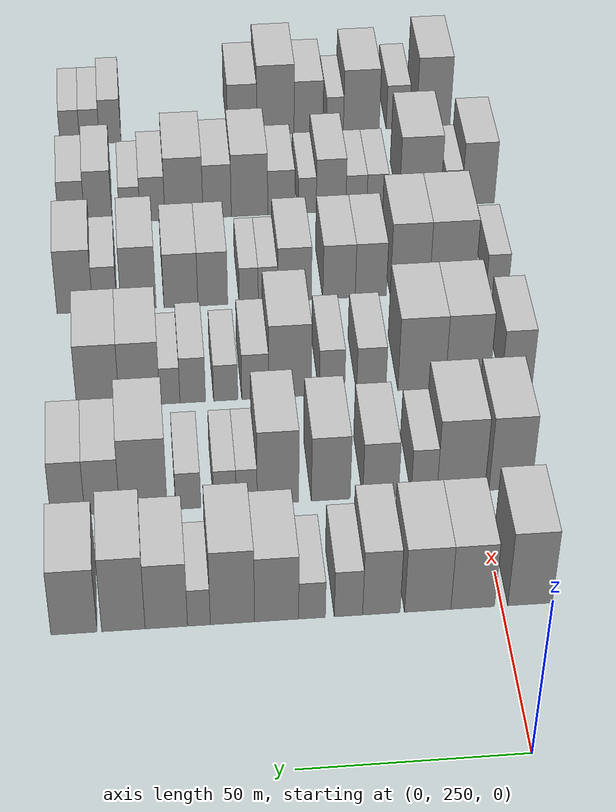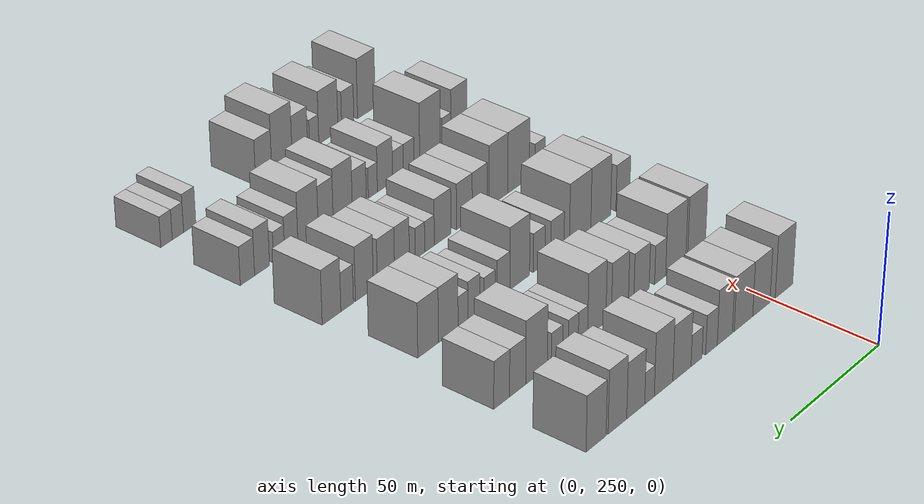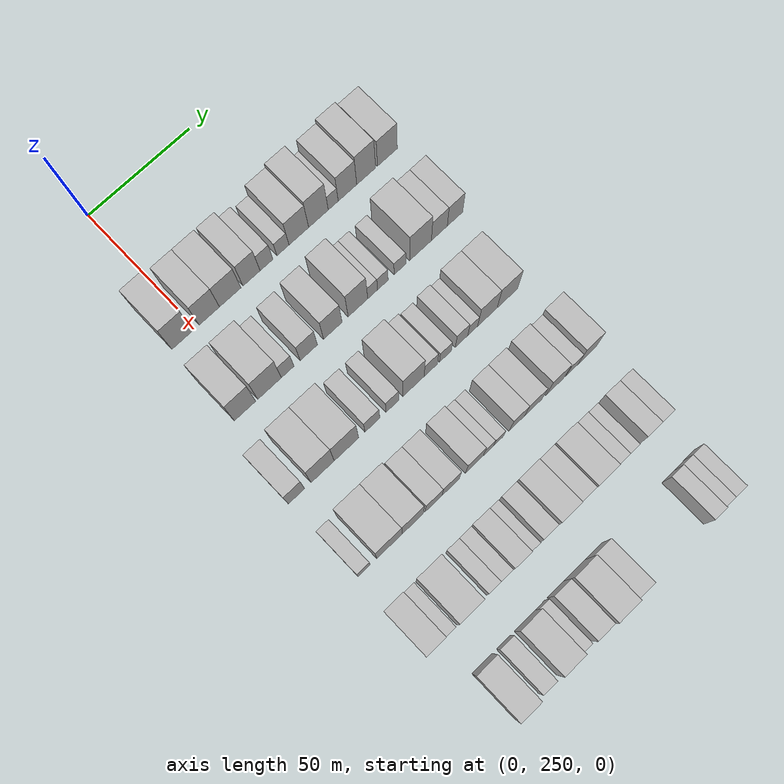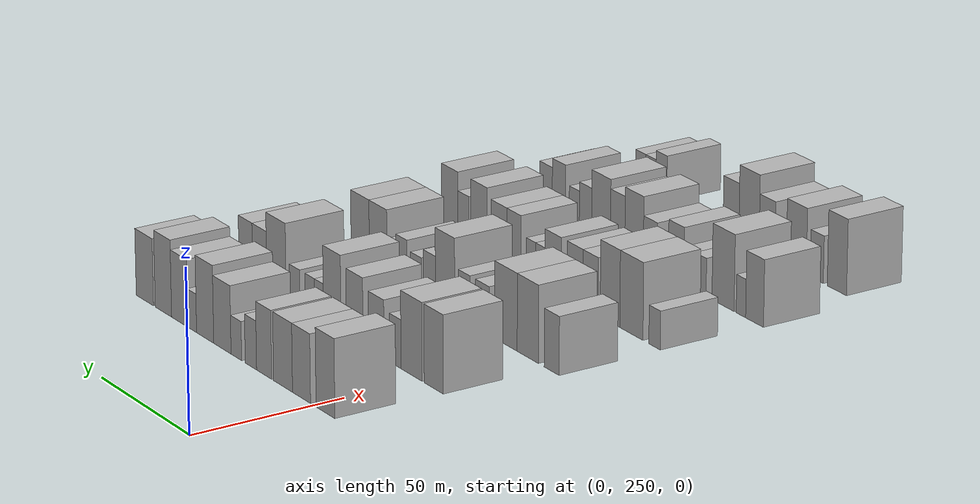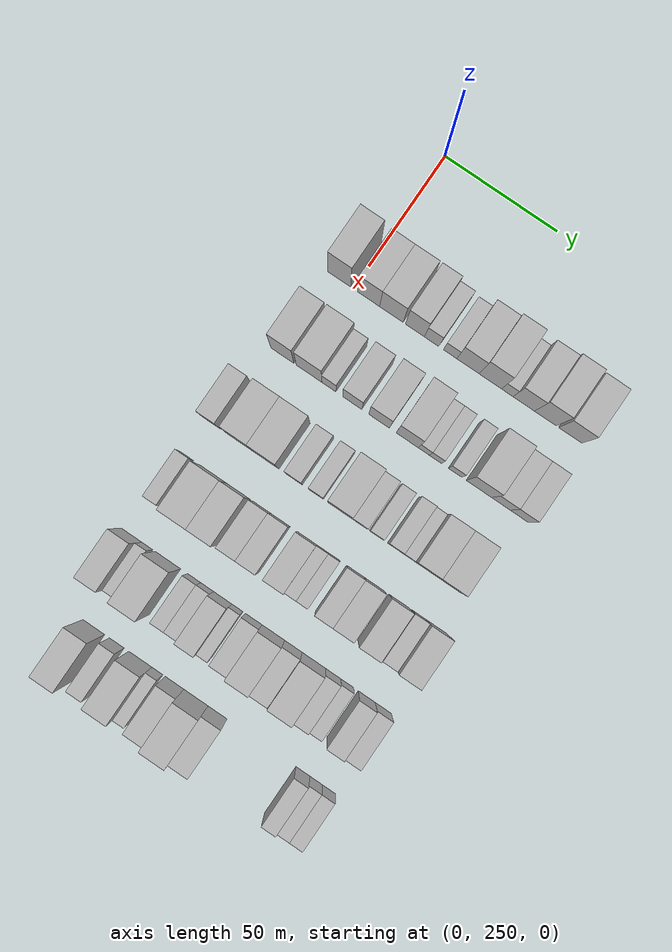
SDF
<sdf version="1.6">
 <world name="default">
  <model name="building_85">
   <static>1</static>
   <pose>50.0000 243.6854 0 0.000000 0.000000 0.000000</pose>
   <link name="link">
    <pose>0 0 12.00 0 0 0</pose>
    <collision name="collision"><geometry><box><size>20.0000 10.0953 24.0000</size></box></geometry></collision>
    <visual name="visual">
     <cast_shadows>0</cast_shadows>
     <geometry><box><size>20.0000 10.0953 24.0000</size></box></geometry>
     <material>
      <script>
       <uri>model://HANNAS_wall/materials/scripts</uri>
       <uri>model://HANNAS_wall/materials/textures</uri>
       <name>vrc/HANNAS_wall</name>
      </script>
     </material>
    </visual>
   </link>
  </model>
  <model name="building_86">
   <static>1</static>
   <pose>50.0000 256.6518 0 0.000000 0.000000 0.000000</pose>
   <link name="link">
    <pose>0 0 10.50 0 0 0</pose>
    <collision name="collision"><geometry><box><size>20.0000 9.8377 21.0000</size></box></geometry></collision>
    <visual name="visual">
     <cast_shadows>0</cast_shadows>
     <geometry><box><size>20.0000 9.8377 21.0000</size></box></geometry>
     <material>
      <script>
       <uri>model://HANNAS_wall/materials/scripts</uri>
       <uri>model://HANNAS_wall/materials/textures</uri>
       <name>vrc/HANNAS_wall</name>
      </script>
     </material>
    </visual>
   </link>
  </model>
  <model name="building_87">
   <static>1</static>
   <pose>50.0000 266.7904 0 0.000000 0.000000 0.000000</pose>
   <link name="link">
    <pose>0 0 10.50 0 0 0</pose>
    <collision name="collision"><geometry><box><size>20.0000 10.4394 21.0000</size></box></geometry></collision>
    <visual name="visual">
     <cast_shadows>0</cast_shadows>
     <geometry><box><size>20.0000 10.4394 21.0000</size></box></geometry>
     <material>
      <script>
       <uri>model://HANNAS_wall/materials/scripts</uri>
       <uri>model://HANNAS_wall/materials/textures</uri>
       <name>vrc/HANNAS_wall</name>
      </script>
     </material>
    </visual>
   </link>
  </model>
  <model name="building_88">
   <static>1</static>
   <pose>50.0000 277.2132 0 0.000000 0.000000 0.000000</pose>
   <link name="link">
    <pose>0 0 10.50 0 0 0</pose>
    <collision name="collision"><geometry><box><size>20.0000 8.4062 21.0000</size></box></geometry></collision>
    <visual name="visual">
     <cast_shadows>0</cast_shadows>
     <geometry><box><size>20.0000 8.4062 21.0000</size></box></geometry>
     <material>
      <script>
       <uri>model://HANNAS_wall/materials/scripts</uri>
       <uri>model://HANNAS_wall/materials/textures</uri>
       <name>vrc/HANNAS_wall</name>
      </script>
     </material>
    </visual>
   </link>
  </model>
  <model name="building_89">
   <static>1</static>
   <pose>50.0000 284.5953 0 0.000000 0.000000 0.000000</pose>
   <link name="link">
    <pose>0 0 7.50 0 0 0</pose>
    <collision name="collision"><geometry><box><size>20.0000 6.3581 15.0000</size></box></geometry></collision>
    <visual name="visual">
     <cast_shadows>0</cast_shadows>
     <geometry><box><size>20.0000 6.3581 15.0000</size></box></geometry>
     <material>
      <script>
       <uri>model://HANNAS_wall/materials/scripts</uri>
       <uri>model://HANNAS_wall/materials/textures</uri>
       <name>vrc/HANNAS_wall</name>
      </script>
     </material>
    </visual>
   </link>
  </model>
  <model name="building_90">
   <static>1</static>
   <pose>50.0000 292.7656 0 0.000000 0.000000 0.000000</pose>
   <link name="link">
    <pose>0 0 6.00 0 0 0</pose>
    <collision name="collision"><geometry><box><size>20.0000 5.9823 12.0000</size></box></geometry></collision>
    <visual name="visual">
     <cast_shadows>0</cast_shadows>
     <geometry><box><size>20.0000 5.9823 12.0000</size></box></geometry>
     <material>
      <script>
       <uri>model://HANNAS_wall/materials/scripts</uri>
       <uri>model://HANNAS_wall/materials/textures</uri>
       <name>vrc/HANNAS_wall</name>
      </script>
     </material>
    </visual>
   </link>
  </model>
  <model name="building_91">
   <static>1</static>
   <pose>50.0000 300.6721 0 0.000000 0.000000 0.000000</pose>
   <link name="link">
    <pose>0 0 10.50 0 0 0</pose>
    <collision name="collision"><geometry><box><size>20.0000 9.8307 21.0000</size></box></geometry></collision>
    <visual name="visual">
     <cast_shadows>0</cast_shadows>
     <geometry><box><size>20.0000 9.8307 21.0000</size></box></geometry>
     <material>
      <script>
       <uri>model://HANNAS_wall/materials/scripts</uri>
       <uri>model://HANNAS_wall/materials/textures</uri>
       <name>vrc/HANNAS_wall</name>
      </script>
     </material>
    </visual>
   </link>
  </model>
  <model name="building_92">
   <static>1</static>
   <pose>50.0000 310.5148 0 0.000000 0.000000 0.000000</pose>
   <link name="link">
    <pose>0 0 12.00 0 0 0</pose>
    <collision name="collision"><geometry><box><size>20.0000 9.8547 24.0000</size></box></geometry></collision>
    <visual name="visual">
     <cast_shadows>0</cast_shadows>
     <geometry><box><size>20.0000 9.8547 24.0000</size></box></geometry>
     <material>
      <script>
       <uri>model://HANNAS_wall/materials/scripts</uri>
       <uri>model://HANNAS_wall/materials/textures</uri>
       <name>vrc/HANNAS_wall</name>
      </script>
     </material>
    </visual>
   </link>
  </model>
  <model name="building_93">
   <static>1</static>
   <pose>50.0000 317.9721 0 0.000000 0.000000 0.000000</pose>
   <link name="link">
    <pose>0 0 6.00 0 0 0</pose>
    <collision name="collision"><geometry><box><size>20.0000 5.0598 12.0000</size></box></geometry></collision>
    <visual name="visual">
     <cast_shadows>0</cast_shadows>
     <geometry><box><size>20.0000 5.0598 12.0000</size></box></geometry>
     <material>
      <script>
       <uri>model://HANNAS_wall/materials/scripts</uri>
       <uri>model://HANNAS_wall/materials/textures</uri>
       <name>vrc/HANNAS_wall</name>
      </script>
     </material>
    </visual>
   </link>
  </model>
  <model name="building_94">
   <static>1</static>
   <pose>50.0000 325.2032 0 0.000000 0.000000 0.000000</pose>
   <link name="link">
    <pose>0 0 10.50 0 0 0</pose>
    <collision name="collision"><geometry><box><size>20.0000 9.4024 21.0000</size></box></geometry></collision>
    <visual name="visual">
     <cast_shadows>0</cast_shadows>
     <geometry><box><size>20.0000 9.4024 21.0000</size></box></geometry>
     <material>
      <script>
       <uri>model://HANNAS_wall/materials/scripts</uri>
       <uri>model://HANNAS_wall/materials/textures</uri>
       <name>vrc/HANNAS_wall</name>
      </script>
     </material>
    </visual>
   </link>
  </model>
  <model name="building_95">
   <static>1</static>
   <pose>50.0000 334.7129 0 0.000000 0.000000 0.000000</pose>
   <link name="link">
    <pose>0 0 12.00 0 0 0</pose>
    <collision name="collision"><geometry><box><size>20.0000 9.6170 24.0000</size></box></geometry></collision>
    <visual name="visual">
     <cast_shadows>0</cast_shadows>
     <geometry><box><size>20.0000 9.6170 24.0000</size></box></geometry>
     <material>
      <script>
       <uri>model://HANNAS_wall/materials/scripts</uri>
       <uri>model://HANNAS_wall/materials/textures</uri>
       <name>vrc/HANNAS_wall</name>
      </script>
     </material>
    </visual>
   </link>
  </model>
  <model name="building_96">
   <static>1</static>
   <pose>50.0000 345.6265 0 0.000000 0.000000 0.000000</pose>
   <link name="link">
    <pose>0 0 10.50 0 0 0</pose>
    <collision name="collision"><geometry><box><size>20.0000 10.2102 21.0000</size></box></geometry></collision>
    <visual name="visual">
     <cast_shadows>0</cast_shadows>
     <geometry><box><size>20.0000 10.2102 21.0000</size></box></geometry>
     <material>
      <script>
       <uri>model://HANNAS_wall/materials/scripts</uri>
       <uri>model://HANNAS_wall/materials/textures</uri>
       <name>vrc/HANNAS_wall</name>
      </script>
     </material>
    </visual>
   </link>
  </model>
  <model name="building_210">
   <static>1</static>
   <pose>85.0000 242.4499 0 0.000000 0.000000 0.000000</pose>
   <link name="link">
    <pose>0 0 12.00 0 0 0</pose>
    <collision name="collision"><geometry><box><size>20.0000 10.1913 24.0000</size></box></geometry></collision>
    <visual name="visual">
     <cast_shadows>0</cast_shadows>
     <geometry><box><size>20.0000 10.1913 24.0000</size></box></geometry>
     <material>
      <script>
       <uri>model://HANNAS_wall/materials/scripts</uri>
       <uri>model://HANNAS_wall/materials/textures</uri>
       <name>vrc/HANNAS_wall</name>
      </script>
     </material>
    </visual>
   </link>
  </model>
  <model name="building_211">
   <static>1</static>
   <pose>85.0000 254.2243 0 0.000000 0.000000 0.000000</pose>
   <link name="link">
    <pose>0 0 12.00 0 0 0</pose>
    <collision name="collision"><geometry><box><size>20.0000 11.3576 24.0000</size></box></geometry></collision>
    <visual name="visual">
     <cast_shadows>0</cast_shadows>
     <geometry><box><size>20.0000 11.3576 24.0000</size></box></geometry>
     <material>
      <script>
       <uri>model://HANNAS_wall/materials/scripts</uri>
       <uri>model://HANNAS_wall/materials/textures</uri>
       <name>vrc/HANNAS_wall</name>
      </script>
     </material>
    </visual>
   </link>
  </model>
  <model name="building_212">
   <static>1</static>
   <pose>85.0000 262.9773 0 0.000000 0.000000 0.000000</pose>
   <link name="link">
    <pose>0 0 7.50 0 0 0</pose>
    <collision name="collision"><geometry><box><size>20.0000 6.1483 15.0000</size></box></geometry></collision>
    <visual name="visual">
     <cast_shadows>0</cast_shadows>
     <geometry><box><size>20.0000 6.1483 15.0000</size></box></geometry>
     <material>
      <script>
       <uri>model://HANNAS_wall/materials/scripts</uri>
       <uri>model://HANNAS_wall/materials/textures</uri>
       <name>vrc/HANNAS_wall</name>
      </script>
     </material>
    </visual>
   </link>
  </model>
  <model name="building_213">
   <static>1</static>
   <pose>85.0000 273.2729 0 0.000000 0.000000 0.000000</pose>
   <link name="link">
    <pose>0 0 9.00 0 0 0</pose>
    <collision name="collision"><geometry><box><size>20.0000 8.4429 18.0000</size></box></geometry></collision>
    <visual name="visual">
     <cast_shadows>0</cast_shadows>
     <geometry><box><size>20.0000 8.4429 18.0000</size></box></geometry>
     <material>
      <script>
       <uri>model://HANNAS_wall/materials/scripts</uri>
       <uri>model://HANNAS_wall/materials/textures</uri>
       <name>vrc/HANNAS_wall</name>
      </script>
     </material>
    </visual>
   </link>
  </model>
  <model name="building_214">
   <static>1</static>
   <pose>85.0000 285.0735 0 0.000000 0.000000 0.000000</pose>
   <link name="link">
    <pose>0 0 10.50 0 0 0</pose>
    <collision name="collision"><geometry><box><size>20.0000 9.1584 21.0000</size></box></geometry></collision>
    <visual name="visual">
     <cast_shadows>0</cast_shadows>
     <geometry><box><size>20.0000 9.1584 21.0000</size></box></geometry>
     <material>
      <script>
       <uri>model://HANNAS_wall/materials/scripts</uri>
       <uri>model://HANNAS_wall/materials/textures</uri>
       <name>vrc/HANNAS_wall</name>
      </script>
     </material>
    </visual>
   </link>
  </model>
  <model name="building_215">
   <static>1</static>
   <pose>85.0000 297.5237 0 0.000000 0.000000 0.000000</pose>
   <link name="link">
    <pose>0 0 12.00 0 0 0</pose>
    <collision name="collision"><geometry><box><size>20.0000 9.7420 24.0000</size></box></geometry></collision>
    <visual name="visual">
     <cast_shadows>0</cast_shadows>
     <geometry><box><size>20.0000 9.7420 24.0000</size></box></geometry>
     <material>
      <script>
       <uri>model://HANNAS_wall/materials/scripts</uri>
       <uri>model://HANNAS_wall/materials/textures</uri>
       <name>vrc/HANNAS_wall</name>
      </script>
     </material>
    </visual>
   </link>
  </model>
  <model name="building_216">
   <static>1</static>
   <pose>85.0000 304.8516 0 0.000000 0.000000 0.000000</pose>
   <link name="link">
    <pose>0 0 6.00 0 0 0</pose>
    <collision name="collision"><geometry><box><size>20.0000 4.9137 12.0000</size></box></geometry></collision>
    <visual name="visual">
     <cast_shadows>0</cast_shadows>
     <geometry><box><size>20.0000 4.9137 12.0000</size></box></geometry>
     <material>
      <script>
       <uri>model://HANNAS_wall/materials/scripts</uri>
       <uri>model://HANNAS_wall/materials/textures</uri>
       <name>vrc/HANNAS_wall</name>
      </script>
     </material>
    </visual>
   </link>
  </model>
  <model name="building_217">
   <static>1</static>
   <pose>85.0000 309.9580 0 0.000000 0.000000 0.000000</pose>
   <link name="link">
    <pose>0 0 6.00 0 0 0</pose>
    <collision name="collision"><geometry><box><size>20.0000 5.2991 12.0000</size></box></geometry></collision>
    <visual name="visual">
     <cast_shadows>0</cast_shadows>
     <geometry><box><size>20.0000 5.2991 12.0000</size></box></geometry>
     <material>
      <script>
       <uri>model://HANNAS_wall/materials/scripts</uri>
       <uri>model://HANNAS_wall/materials/textures</uri>
       <name>vrc/HANNAS_wall</name>
      </script>
     </material>
    </visual>
   </link>
  </model>
  <model name="building_218">
   <static>1</static>
   <pose>85.0000 318.5441 0 0.000000 0.000000 0.000000</pose>
   <link name="link">
    <pose>0 0 6.00 0 0 0</pose>
    <collision name="collision"><geometry><box><size>20.0000 5.8732 12.0000</size></box></geometry></collision>
    <visual name="visual">
     <cast_shadows>0</cast_shadows>
     <geometry><box><size>20.0000 5.8732 12.0000</size></box></geometry>
     <material>
      <script>
       <uri>model://HANNAS_wall/materials/scripts</uri>
       <uri>model://HANNAS_wall/materials/textures</uri>
       <name>vrc/HANNAS_wall</name>
      </script>
     </material>
    </visual>
   </link>
  </model>
  <model name="building_219">
   <static>1</static>
   <pose>85.0000 329.0265 0 0.000000 0.000000 0.000000</pose>
   <link name="link">
    <pose>0 0 12.00 0 0 0</pose>
    <collision name="collision"><geometry><box><size>20.0000 11.0916 24.0000</size></box></geometry></collision>
    <visual name="visual">
     <cast_shadows>0</cast_shadows>
     <geometry><box><size>20.0000 11.0916 24.0000</size></box></geometry>
     <material>
      <script>
       <uri>model://HANNAS_wall/materials/scripts</uri>
       <uri>model://HANNAS_wall/materials/textures</uri>
       <name>vrc/HANNAS_wall</name>
      </script>
     </material>
    </visual>
   </link>
  </model>
  <model name="building_220">
   <static>1</static>
   <pose>85.0000 338.6519 0 0.000000 0.000000 0.000000</pose>
   <link name="link">
    <pose>0 0 9.00 0 0 0</pose>
    <collision name="collision"><geometry><box><size>20.0000 8.1592 18.0000</size></box></geometry></collision>
    <visual name="visual">
     <cast_shadows>0</cast_shadows>
     <geometry><box><size>20.0000 8.1592 18.0000</size></box></geometry>
     <material>
      <script>
       <uri>model://HANNAS_wall/materials/scripts</uri>
       <uri>model://HANNAS_wall/materials/textures</uri>
       <name>vrc/HANNAS_wall</name>
      </script>
     </material>
    </visual>
   </link>
  </model>
  <model name="building_221">
   <static>1</static>
   <pose>85.0000 346.7025 0 0.000000 0.000000 0.000000</pose>
   <link name="link">
    <pose>0 0 9.00 0 0 0</pose>
    <collision name="collision"><geometry><box><size>20.0000 7.9418 18.0000</size></box></geometry></collision>
    <visual name="visual">
     <cast_shadows>0</cast_shadows>
     <geometry><box><size>20.0000 7.9418 18.0000</size></box></geometry>
     <material>
      <script>
       <uri>model://HANNAS_wall/materials/scripts</uri>
       <uri>model://HANNAS_wall/materials/textures</uri>
       <name>vrc/HANNAS_wall</name>
      </script>
     </material>
    </visual>
   </link>
  </model>
  <model name="building_338">
   <static>1</static>
   <pose>120.0000 235.0759 0 0.000000 0.000000 0.000000</pose>
   <link name="link">
    <pose>0 0 9.00 0 0 0</pose>
    <collision name="collision"><geometry><box><size>20.0000 7.7773 18.0000</size></box></geometry></collision>
    <visual name="visual">
     <cast_shadows>0</cast_shadows>
     <geometry><box><size>20.0000 7.7773 18.0000</size></box></geometry>
     <material>
      <script>
       <uri>model://HANNAS_wall/materials/scripts</uri>
       <uri>model://HANNAS_wall/materials/textures</uri>
       <name>vrc/HANNAS_wall</name>
      </script>
     </material>
    </visual>
   </link>
  </model>
  <model name="building_339">
   <static>1</static>
   <pose>120.0000 247.5115 0 0.000000 0.000000 0.000000</pose>
   <link name="link">
    <pose>0 0 12.00 0 0 0</pose>
    <collision name="collision"><geometry><box><size>20.0000 11.0941 24.0000</size></box></geometry></collision>
    <visual name="visual">
     <cast_shadows>0</cast_shadows>
     <geometry><box><size>20.0000 11.0941 24.0000</size></box></geometry>
     <material>
      <script>
       <uri>model://HANNAS_wall/materials/scripts</uri>
       <uri>model://HANNAS_wall/materials/textures</uri>
       <name>vrc/HANNAS_wall</name>
      </script>
     </material>
    </visual>
   </link>
  </model>
  <model name="building_340">
   <static>1</static>
   <pose>120.0000 258.9691 0 0.000000 0.000000 0.000000</pose>
   <link name="link">
    <pose>0 0 12.00 0 0 0</pose>
    <collision name="collision"><geometry><box><size>20.0000 11.8211 24.0000</size></box></geometry></collision>
    <visual name="visual">
     <cast_shadows>0</cast_shadows>
     <geometry><box><size>20.0000 11.8211 24.0000</size></box></geometry>
     <material>
      <script>
       <uri>model://HANNAS_wall/materials/scripts</uri>
       <uri>model://HANNAS_wall/materials/textures</uri>
       <name>vrc/HANNAS_wall</name>
      </script>
     </material>
    </visual>
   </link>
  </model>
  <model name="building_341">
   <static>1</static>
   <pose>120.0000 271.5171 0 0.000000 0.000000 0.000000</pose>
   <link name="link">
    <pose>0 0 7.50 0 0 0</pose>
    <collision name="collision"><geometry><box><size>20.0000 7.2749 15.0000</size></box></geometry></collision>
    <visual name="visual">
     <cast_shadows>0</cast_shadows>
     <geometry><box><size>20.0000 7.2749 15.0000</size></box></geometry>
     <material>
      <script>
       <uri>model://HANNAS_wall/materials/scripts</uri>
       <uri>model://HANNAS_wall/materials/textures</uri>
       <name>vrc/HANNAS_wall</name>
      </script>
     </material>
    </visual>
   </link>
  </model>
  <model name="building_342">
   <static>1</static>
   <pose>120.0000 281.2989 0 0.000000 0.000000 0.000000</pose>
   <link name="link">
    <pose>0 0 7.50 0 0 0</pose>
    <collision name="collision"><geometry><box><size>20.0000 6.2886 15.0000</size></box></geometry></collision>
    <visual name="visual">
     <cast_shadows>0</cast_shadows>
     <geometry><box><size>20.0000 6.2886 15.0000</size></box></geometry>
     <material>
      <script>
       <uri>model://HANNAS_wall/materials/scripts</uri>
       <uri>model://HANNAS_wall/materials/textures</uri>
       <name>vrc/HANNAS_wall</name>
      </script>
     </material>
    </visual>
   </link>
  </model>
  <model name="building_343">
   <static>1</static>
   <pose>120.0000 291.6994 0 0.000000 0.000000 0.000000</pose>
   <link name="link">
    <pose>0 0 12.00 0 0 0</pose>
    <collision name="collision"><geometry><box><size>20.0000 10.5124 24.0000</size></box></geometry></collision>
    <visual name="visual">
     <cast_shadows>0</cast_shadows>
     <geometry><box><size>20.0000 10.5124 24.0000</size></box></geometry>
     <material>
      <script>
       <uri>model://HANNAS_wall/materials/scripts</uri>
       <uri>model://HANNAS_wall/materials/textures</uri>
       <name>vrc/HANNAS_wall</name>
      </script>
     </material>
    </visual>
   </link>
  </model>
  <model name="building_344">
   <static>1</static>
   <pose>120.0000 300.2752 0 0.000000 0.000000 0.000000</pose>
   <link name="link">
    <pose>0 0 7.50 0 0 0</pose>
    <collision name="collision"><geometry><box><size>20.0000 6.6392 15.0000</size></box></geometry></collision>
    <visual name="visual">
     <cast_shadows>0</cast_shadows>
     <geometry><box><size>20.0000 6.6392 15.0000</size></box></geometry>
     <material>
      <script>
       <uri>model://HANNAS_wall/materials/scripts</uri>
       <uri>model://HANNAS_wall/materials/textures</uri>
       <name>vrc/HANNAS_wall</name>
      </script>
     </material>
    </visual>
   </link>
  </model>
  <model name="building_345">
   <static>1</static>
   <pose>120.0000 307.5740 0 0.000000 0.000000 0.000000</pose>
   <link name="link">
    <pose>0 0 6.00 0 0 0</pose>
    <collision name="collision"><geometry><box><size>20.0000 5.9585 12.0000</size></box></geometry></collision>
    <visual name="visual">
     <cast_shadows>0</cast_shadows>
     <geometry><box><size>20.0000 5.9585 12.0000</size></box></geometry>
     <material>
      <script>
       <uri>model://HANNAS_wall/materials/scripts</uri>
       <uri>model://HANNAS_wall/materials/textures</uri>
       <name>vrc/HANNAS_wall</name>
      </script>
     </material>
    </visual>
   </link>
  </model>
  <model name="building_346">
   <static>1</static>
   <pose>120.0000 315.6915 0 0.000000 0.000000 0.000000</pose>
   <link name="link">
    <pose>0 0 7.50 0 0 0</pose>
    <collision name="collision"><geometry><box><size>20.0000 6.2765 15.0000</size></box></geometry></collision>
    <visual name="visual">
     <cast_shadows>0</cast_shadows>
     <geometry><box><size>20.0000 6.2765 15.0000</size></box></geometry>
     <material>
      <script>
       <uri>model://HANNAS_wall/materials/scripts</uri>
       <uri>model://HANNAS_wall/materials/textures</uri>
       <name>vrc/HANNAS_wall</name>
      </script>
     </material>
    </visual>
   </link>
  </model>
  <model name="building_347">
   <static>1</static>
   <pose>120.0000 321.3112 0 0.000000 0.000000 0.000000</pose>
   <link name="link">
    <pose>0 0 6.00 0 0 0</pose>
    <collision name="collision"><geometry><box><size>20.0000 4.9630 12.0000</size></box></geometry></collision>
    <visual name="visual">
     <cast_shadows>0</cast_shadows>
     <geometry><box><size>20.0000 4.9630 12.0000</size></box></geometry>
     <material>
      <script>
       <uri>model://HANNAS_wall/materials/scripts</uri>
       <uri>model://HANNAS_wall/materials/textures</uri>
       <name>vrc/HANNAS_wall</name>
      </script>
     </material>
    </visual>
   </link>
  </model>
  <model name="building_348">
   <static>1</static>
   <pose>120.0000 328.7707 0 0.000000 0.000000 0.000000</pose>
   <link name="link">
    <pose>0 0 10.50 0 0 0</pose>
    <collision name="collision"><geometry><box><size>20.0000 9.9560 21.0000</size></box></geometry></collision>
    <visual name="visual">
     <cast_shadows>0</cast_shadows>
     <geometry><box><size>20.0000 9.9560 21.0000</size></box></geometry>
     <material>
      <script>
       <uri>model://HANNAS_wall/materials/scripts</uri>
       <uri>model://HANNAS_wall/materials/textures</uri>
       <name>vrc/HANNAS_wall</name>
      </script>
     </material>
    </visual>
   </link>
  </model>
  <model name="building_349">
   <static>1</static>
   <pose>120.0000 338.9481 0 0.000000 0.000000 0.000000</pose>
   <link name="link">
    <pose>0 0 10.50 0 0 0</pose>
    <collision name="collision"><geometry><box><size>20.0000 10.3988 21.0000</size></box></geometry></collision>
    <visual name="visual">
     <cast_shadows>0</cast_shadows>
     <geometry><box><size>20.0000 10.3988 21.0000</size></box></geometry>
     <material>
      <script>
       <uri>model://HANNAS_wall/materials/scripts</uri>
       <uri>model://HANNAS_wall/materials/textures</uri>
       <name>vrc/HANNAS_wall</name>
      </script>
     </material>
    </visual>
   </link>
  </model>
  <model name="building_458">
   <static>1</static>
   <pose>155.0000 234.4824 0 0.000000 0.000000 0.000000</pose>
   <link name="link">
    <pose>0 0 6.00 0 0 0</pose>
    <collision name="collision"><geometry><box><size>20.0000 5.8386 12.0000</size></box></geometry></collision>
    <visual name="visual">
     <cast_shadows>0</cast_shadows>
     <geometry><box><size>20.0000 5.8386 12.0000</size></box></geometry>
     <material>
      <script>
       <uri>model://HANNAS_wall/materials/scripts</uri>
       <uri>model://HANNAS_wall/materials/textures</uri>
       <name>vrc/HANNAS_wall</name>
      </script>
     </material>
    </visual>
   </link>
  </model>
  <model name="building_459">
   <static>1</static>
   <pose>155.0000 246.3779 0 0.000000 0.000000 0.000000</pose>
   <link name="link">
    <pose>0 0 12.00 0 0 0</pose>
    <collision name="collision"><geometry><box><size>20.0000 11.9525 24.0000</size></box></geometry></collision>
    <visual name="visual">
     <cast_shadows>0</cast_shadows>
     <geometry><box><size>20.0000 11.9525 24.0000</size></box></geometry>
     <material>
      <script>
       <uri>model://HANNAS_wall/materials/scripts</uri>
       <uri>model://HANNAS_wall/materials/textures</uri>
       <name>vrc/HANNAS_wall</name>
      </script>
     </material>
    </visual>
   </link>
  </model>
  <model name="building_460">
   <static>1</static>
   <pose>155.0000 257.4640 0 0.000000 0.000000 0.000000</pose>
   <link name="link">
    <pose>0 0 12.00 0 0 0</pose>
    <collision name="collision"><geometry><box><size>20.0000 10.2197 24.0000</size></box></geometry></collision>
    <visual name="visual">
     <cast_shadows>0</cast_shadows>
     <geometry><box><size>20.0000 10.2197 24.0000</size></box></geometry>
     <material>
      <script>
       <uri>model://HANNAS_wall/materials/scripts</uri>
       <uri>model://HANNAS_wall/materials/textures</uri>
       <name>vrc/HANNAS_wall</name>
      </script>
     </material>
    </visual>
   </link>
  </model>
  <model name="building_461">
   <static>1</static>
   <pose>155.0000 267.6364 0 0.000000 0.000000 0.000000</pose>
   <link name="link">
    <pose>0 0 9.00 0 0 0</pose>
    <collision name="collision"><geometry><box><size>20.0000 8.1250 18.0000</size></box></geometry></collision>
    <visual name="visual">
     <cast_shadows>0</cast_shadows>
     <geometry><box><size>20.0000 8.1250 18.0000</size></box></geometry>
     <material>
      <script>
       <uri>model://HANNAS_wall/materials/scripts</uri>
       <uri>model://HANNAS_wall/materials/textures</uri>
       <name>vrc/HANNAS_wall</name>
      </script>
     </material>
    </visual>
   </link>
  </model>
  <model name="building_462">
   <static>1</static>
   <pose>155.0000 275.9210 0 0.000000 0.000000 0.000000</pose>
   <link name="link">
    <pose>0 0 9.00 0 0 0</pose>
    <collision name="collision"><geometry><box><size>20.0000 8.4442 18.0000</size></box></geometry></collision>
    <visual name="visual">
     <cast_shadows>0</cast_shadows>
     <geometry><box><size>20.0000 8.4442 18.0000</size></box></geometry>
     <material>
      <script>
       <uri>model://HANNAS_wall/materials/scripts</uri>
       <uri>model://HANNAS_wall/materials/textures</uri>
       <name>vrc/HANNAS_wall</name>
      </script>
     </material>
    </visual>
   </link>
  </model>
  <model name="building_463">
   <static>1</static>
   <pose>155.0000 287.5076 0 0.000000 0.000000 0.000000</pose>
   <link name="link">
    <pose>0 0 9.00 0 0 0</pose>
    <collision name="collision"><geometry><box><size>20.0000 8.7291 18.0000</size></box></geometry></collision>
    <visual name="visual">
     <cast_shadows>0</cast_shadows>
     <geometry><box><size>20.0000 8.7291 18.0000</size></box></geometry>
     <material>
      <script>
       <uri>model://HANNAS_wall/materials/scripts</uri>
       <uri>model://HANNAS_wall/materials/textures</uri>
       <name>vrc/HANNAS_wall</name>
      </script>
     </material>
    </visual>
   </link>
  </model>
  <model name="building_464">
   <static>1</static>
   <pose>155.0000 294.3917 0 0.000000 0.000000 0.000000</pose>
   <link name="link">
    <pose>0 0 6.00 0 0 0</pose>
    <collision name="collision"><geometry><box><size>20.0000 5.0390 12.0000</size></box></geometry></collision>
    <visual name="visual">
     <cast_shadows>0</cast_shadows>
     <geometry><box><size>20.0000 5.0390 12.0000</size></box></geometry>
     <material>
      <script>
       <uri>model://HANNAS_wall/materials/scripts</uri>
       <uri>model://HANNAS_wall/materials/textures</uri>
       <name>vrc/HANNAS_wall</name>
      </script>
     </material>
    </visual>
   </link>
  </model>
  <model name="building_465">
   <static>1</static>
   <pose>155.0000 299.3791 0 0.000000 0.000000 0.000000</pose>
   <link name="link">
    <pose>0 0 6.00 0 0 0</pose>
    <collision name="collision"><geometry><box><size>20.0000 4.9359 12.0000</size></box></geometry></collision>
    <visual name="visual">
     <cast_shadows>0</cast_shadows>
     <geometry><box><size>20.0000 4.9359 12.0000</size></box></geometry>
     <material>
      <script>
       <uri>model://HANNAS_wall/materials/scripts</uri>
       <uri>model://HANNAS_wall/materials/textures</uri>
       <name>vrc/HANNAS_wall</name>
      </script>
     </material>
    </visual>
   </link>
  </model>
  <model name="building_466">
   <static>1</static>
   <pose>155.0000 308.6914 0 0.000000 0.000000 0.000000</pose>
   <link name="link">
    <pose>0 0 9.00 0 0 0</pose>
    <collision name="collision"><geometry><box><size>20.0000 7.6886 18.0000</size></box></geometry></collision>
    <visual name="visual">
     <cast_shadows>0</cast_shadows>
     <geometry><box><size>20.0000 7.6886 18.0000</size></box></geometry>
     <material>
      <script>
       <uri>model://HANNAS_wall/materials/scripts</uri>
       <uri>model://HANNAS_wall/materials/textures</uri>
       <name>vrc/HANNAS_wall</name>
      </script>
     </material>
    </visual>
   </link>
  </model>
  <model name="building_467">
   <static>1</static>
   <pose>155.0000 316.9183 0 0.000000 0.000000 0.000000</pose>
   <link name="link">
    <pose>0 0 9.00 0 0 0</pose>
    <collision name="collision"><geometry><box><size>20.0000 8.7653 18.0000</size></box></geometry></collision>
    <visual name="visual">
     <cast_shadows>0</cast_shadows>
     <geometry><box><size>20.0000 8.7653 18.0000</size></box></geometry>
     <material>
      <script>
       <uri>model://HANNAS_wall/materials/scripts</uri>
       <uri>model://HANNAS_wall/materials/textures</uri>
       <name>vrc/HANNAS_wall</name>
      </script>
     </material>
    </visual>
   </link>
  </model>
  <model name="building_468">
   <static>1</static>
   <pose>155.0000 327.8336 0 0.000000 0.000000 0.000000</pose>
   <link name="link">
    <pose>0 0 10.50 0 0 0</pose>
    <collision name="collision"><geometry><box><size>20.0000 9.0653 21.0000</size></box></geometry></collision>
    <visual name="visual">
     <cast_shadows>0</cast_shadows>
     <geometry><box><size>20.0000 9.0653 21.0000</size></box></geometry>
     <material>
      <script>
       <uri>model://HANNAS_wall/materials/scripts</uri>
       <uri>model://HANNAS_wall/materials/textures</uri>
       <name>vrc/HANNAS_wall</name>
      </script>
     </material>
    </visual>
   </link>
  </model>
  <model name="building_469">
   <static>1</static>
   <pose>155.0000 336.4859 0 0.000000 0.000000 0.000000</pose>
   <link name="link">
    <pose>0 0 7.50 0 0 0</pose>
    <collision name="collision"><geometry><box><size>20.0000 6.2394 15.0000</size></box></geometry></collision>
    <visual name="visual">
     <cast_shadows>0</cast_shadows>
     <geometry><box><size>20.0000 6.2394 15.0000</size></box></geometry>
     <material>
      <script>
       <uri>model://HANNAS_wall/materials/scripts</uri>
       <uri>model://HANNAS_wall/materials/textures</uri>
       <name>vrc/HANNAS_wall</name>
      </script>
     </material>
    </visual>
   </link>
  </model>
  <model name="building_470">
   <static>1</static>
   <pose>155.0000 344.2071 0 0.000000 0.000000 0.000000</pose>
   <link name="link">
    <pose>0 0 10.50 0 0 0</pose>
    <collision name="collision"><geometry><box><size>20.0000 9.2030 21.0000</size></box></geometry></collision>
    <visual name="visual">
     <cast_shadows>0</cast_shadows>
     <geometry><box><size>20.0000 9.2030 21.0000</size></box></geometry>
     <material>
      <script>
       <uri>model://HANNAS_wall/materials/scripts</uri>
       <uri>model://HANNAS_wall/materials/textures</uri>
       <name>vrc/HANNAS_wall</name>
      </script>
     </material>
    </visual>
   </link>
  </model>
  <model name="building_585">
   <static>1</static>
   <pose>190.0000 234.2951 0 0.000000 0.000000 0.000000</pose>
   <link name="link">
    <pose>0 0 10.50 0 0 0</pose>
    <collision name="collision"><geometry><box><size>20.0000 8.9863 21.0000</size></box></geometry></collision>
    <visual name="visual">
     <cast_shadows>0</cast_shadows>
     <geometry><box><size>20.0000 8.9863 21.0000</size></box></geometry>
     <material>
      <script>
       <uri>model://HANNAS_wall/materials/scripts</uri>
       <uri>model://HANNAS_wall/materials/textures</uri>
       <name>vrc/HANNAS_wall</name>
      </script>
     </material>
    </visual>
   </link>
  </model>
  <model name="building_586">
   <static>1</static>
   <pose>190.0000 241.1989 0 0.000000 0.000000 0.000000</pose>
   <link name="link">
    <pose>0 0 6.00 0 0 0</pose>
    <collision name="collision"><geometry><box><size>20.0000 4.8212 12.0000</size></box></geometry></collision>
    <visual name="visual">
     <cast_shadows>0</cast_shadows>
     <geometry><box><size>20.0000 4.8212 12.0000</size></box></geometry>
     <material>
      <script>
       <uri>model://HANNAS_wall/materials/scripts</uri>
       <uri>model://HANNAS_wall/materials/textures</uri>
       <name>vrc/HANNAS_wall</name>
      </script>
     </material>
    </visual>
   </link>
  </model>
  <model name="building_587">
   <static>1</static>
   <pose>190.0000 250.2698 0 0.000000 0.000000 0.000000</pose>
   <link name="link">
    <pose>0 0 12.00 0 0 0</pose>
    <collision name="collision"><geometry><box><size>20.0000 11.3206 24.0000</size></box></geometry></collision>
    <visual name="visual">
     <cast_shadows>0</cast_shadows>
     <geometry><box><size>20.0000 11.3206 24.0000</size></box></geometry>
     <material>
      <script>
       <uri>model://HANNAS_wall/materials/scripts</uri>
       <uri>model://HANNAS_wall/materials/textures</uri>
       <name>vrc/HANNAS_wall</name>
      </script>
     </material>
    </visual>
   </link>
  </model>
  <model name="building_588">
   <static>1</static>
   <pose>190.0000 261.8412 0 0.000000 0.000000 0.000000</pose>
   <link name="link">
    <pose>0 0 6.00 0 0 0</pose>
    <collision name="collision"><geometry><box><size>20.0000 5.8221 12.0000</size></box></geometry></collision>
    <visual name="visual">
     <cast_shadows>0</cast_shadows>
     <geometry><box><size>20.0000 5.8221 12.0000</size></box></geometry>
     <material>
      <script>
       <uri>model://HANNAS_wall/materials/scripts</uri>
       <uri>model://HANNAS_wall/materials/textures</uri>
       <name>vrc/HANNAS_wall</name>
      </script>
     </material>
    </visual>
   </link>
  </model>
  <model name="building_589">
   <static>1</static>
   <pose>190.0000 267.6150 0 0.000000 0.000000 0.000000</pose>
   <link name="link">
    <pose>0 0 6.00 0 0 0</pose>
    <collision name="collision"><geometry><box><size>20.0000 5.7257 12.0000</size></box></geometry></collision>
    <visual name="visual">
     <cast_shadows>0</cast_shadows>
     <geometry><box><size>20.0000 5.7257 12.0000</size></box></geometry>
     <material>
      <script>
       <uri>model://HANNAS_wall/materials/scripts</uri>
       <uri>model://HANNAS_wall/materials/textures</uri>
       <name>vrc/HANNAS_wall</name>
      </script>
     </material>
    </visual>
   </link>
  </model>
  <model name="building_590">
   <static>1</static>
   <pose>190.0000 274.5128 0 0.000000 0.000000 0.000000</pose>
   <link name="link">
    <pose>0 0 9.00 0 0 0</pose>
    <collision name="collision"><geometry><box><size>20.0000 8.0699 18.0000</size></box></geometry></collision>
    <visual name="visual">
     <cast_shadows>0</cast_shadows>
     <geometry><box><size>20.0000 8.0699 18.0000</size></box></geometry>
     <material>
      <script>
       <uri>model://HANNAS_wall/materials/scripts</uri>
       <uri>model://HANNAS_wall/materials/textures</uri>
       <name>vrc/HANNAS_wall</name>
      </script>
     </material>
    </visual>
   </link>
  </model>
  <model name="building_591">
   <static>1</static>
   <pose>190.0000 280.9609 0 0.000000 0.000000 0.000000</pose>
   <link name="link">
    <pose>0 0 6.00 0 0 0</pose>
    <collision name="collision"><geometry><box><size>20.0000 4.8264 12.0000</size></box></geometry></collision>
    <visual name="visual">
     <cast_shadows>0</cast_shadows>
     <geometry><box><size>20.0000 4.8264 12.0000</size></box></geometry>
     <material>
      <script>
       <uri>model://HANNAS_wall/materials/scripts</uri>
       <uri>model://HANNAS_wall/materials/textures</uri>
       <name>vrc/HANNAS_wall</name>
      </script>
     </material>
    </visual>
   </link>
  </model>
  <model name="building_592">
   <static>1</static>
   <pose>190.0000 288.0500 0 0.000000 0.000000 0.000000</pose>
   <link name="link">
    <pose>0 0 7.50 0 0 0</pose>
    <collision name="collision"><geometry><box><size>20.0000 7.3519 15.0000</size></box></geometry></collision>
    <visual name="visual">
     <cast_shadows>0</cast_shadows>
     <geometry><box><size>20.0000 7.3519 15.0000</size></box></geometry>
     <material>
      <script>
       <uri>model://HANNAS_wall/materials/scripts</uri>
       <uri>model://HANNAS_wall/materials/textures</uri>
       <name>vrc/HANNAS_wall</name>
      </script>
     </material>
    </visual>
   </link>
  </model>
  <model name="building_593">
   <static>1</static>
   <pose>190.0000 296.6681 0 0.000000 0.000000 0.000000</pose>
   <link name="link">
    <pose>0 0 10.50 0 0 0</pose>
    <collision name="collision"><geometry><box><size>20.0000 9.8842 21.0000</size></box></geometry></collision>
    <visual name="visual">
     <cast_shadows>0</cast_shadows>
     <geometry><box><size>20.0000 9.8842 21.0000</size></box></geometry>
     <material>
      <script>
       <uri>model://HANNAS_wall/materials/scripts</uri>
       <uri>model://HANNAS_wall/materials/textures</uri>
       <name>vrc/HANNAS_wall</name>
      </script>
     </material>
    </visual>
   </link>
  </model>
  <model name="building_594">
   <static>1</static>
   <pose>190.0000 305.4422 0 0.000000 0.000000 0.000000</pose>
   <link name="link">
    <pose>0 0 9.00 0 0 0</pose>
    <collision name="collision"><geometry><box><size>20.0000 7.6640 18.0000</size></box></geometry></collision>
    <visual name="visual">
     <cast_shadows>0</cast_shadows>
     <geometry><box><size>20.0000 7.6640 18.0000</size></box></geometry>
     <material>
      <script>
       <uri>model://HANNAS_wall/materials/scripts</uri>
       <uri>model://HANNAS_wall/materials/textures</uri>
       <name>vrc/HANNAS_wall</name>
      </script>
     </material>
    </visual>
   </link>
  </model>
  <model name="building_595">
   <static>1</static>
   <pose>190.0000 314.4066 0 0.000000 0.000000 0.000000</pose>
   <link name="link">
    <pose>0 0 10.50 0 0 0</pose>
    <collision name="collision"><geometry><box><size>20.0000 10.2649 21.0000</size></box></geometry></collision>
    <visual name="visual">
     <cast_shadows>0</cast_shadows>
     <geometry><box><size>20.0000 10.2649 21.0000</size></box></geometry>
     <material>
      <script>
       <uri>model://HANNAS_wall/materials/scripts</uri>
       <uri>model://HANNAS_wall/materials/textures</uri>
       <name>vrc/HANNAS_wall</name>
      </script>
     </material>
    </visual>
   </link>
  </model>
  <model name="building_596">
   <static>1</static>
   <pose>190.0000 322.8905 0 0.000000 0.000000 0.000000</pose>
   <link name="link">
    <pose>0 0 7.50 0 0 0</pose>
    <collision name="collision"><geometry><box><size>20.0000 6.7028 15.0000</size></box></geometry></collision>
    <visual name="visual">
     <cast_shadows>0</cast_shadows>
     <geometry><box><size>20.0000 6.7028 15.0000</size></box></geometry>
     <material>
      <script>
       <uri>model://HANNAS_wall/materials/scripts</uri>
       <uri>model://HANNAS_wall/materials/textures</uri>
       <name>vrc/HANNAS_wall</name>
      </script>
     </material>
    </visual>
   </link>
  </model>
  <model name="building_597">
   <static>1</static>
   <pose>190.0000 328.9959 0 0.000000 0.000000 0.000000</pose>
   <link name="link">
    <pose>0 0 6.00 0 0 0</pose>
    <collision name="collision"><geometry><box><size>20.0000 5.5080 12.0000</size></box></geometry></collision>
    <visual name="visual">
     <cast_shadows>0</cast_shadows>
     <geometry><box><size>20.0000 5.5080 12.0000</size></box></geometry>
     <material>
      <script>
       <uri>model://HANNAS_wall/materials/scripts</uri>
       <uri>model://HANNAS_wall/materials/textures</uri>
       <name>vrc/HANNAS_wall</name>
      </script>
     </material>
    </visual>
   </link>
  </model>
  <model name="building_598">
   <static>1</static>
   <pose>190.0000 337.4341 0 0.000000 0.000000 0.000000</pose>
   <link name="link">
    <pose>0 0 9.00 0 0 0</pose>
    <collision name="collision"><geometry><box><size>20.0000 7.3685 18.0000</size></box></geometry></collision>
    <visual name="visual">
     <cast_shadows>0</cast_shadows>
     <geometry><box><size>20.0000 7.3685 18.0000</size></box></geometry>
     <material>
      <script>
       <uri>model://HANNAS_wall/materials/scripts</uri>
       <uri>model://HANNAS_wall/materials/textures</uri>
       <name>vrc/HANNAS_wall</name>
      </script>
     </material>
    </visual>
   </link>
  </model>
  <model name="building_599">
   <static>1</static>
   <pose>190.0000 344.6180 0 0.000000 0.000000 0.000000</pose>
   <link name="link">
    <pose>0 0 7.50 0 0 0</pose>
    <collision name="collision"><geometry><box><size>20.0000 6.9994 15.0000</size></box></geometry></collision>
    <visual name="visual">
     <cast_shadows>0</cast_shadows>
     <geometry><box><size>20.0000 6.9994 15.0000</size></box></geometry>
     <material>
      <script>
       <uri>model://HANNAS_wall/materials/scripts</uri>
       <uri>model://HANNAS_wall/materials/textures</uri>
       <name>vrc/HANNAS_wall</name>
      </script>
     </material>
    </visual>
   </link>
  </model>
  <model name="building_705">
   <static>1</static>
   <pose>225.0000 241.8783 0 0.000000 0.000000 0.000000</pose>
   <link name="link">
    <pose>0 0 12.00 0 0 0</pose>
    <collision name="collision"><geometry><box><size>20.0000 9.6391 24.0000</size></box></geometry></collision>
    <visual name="visual">
     <cast_shadows>0</cast_shadows>
     <geometry><box><size>20.0000 9.6391 24.0000</size></box></geometry>
     <material>
      <script>
       <uri>model://HANNAS_wall/materials/scripts</uri>
       <uri>model://HANNAS_wall/materials/textures</uri>
       <name>vrc/HANNAS_wall</name>
      </script>
     </material>
    </visual>
   </link>
  </model>
  <model name="building_706">
   <static>1</static>
   <pose>225.0000 251.9880 0 0.000000 0.000000 0.000000</pose>
   <link name="link">
    <pose>0 0 7.50 0 0 0</pose>
    <collision name="collision"><geometry><box><size>20.0000 6.5804 15.0000</size></box></geometry></collision>
    <visual name="visual">
     <cast_shadows>0</cast_shadows>
     <geometry><box><size>20.0000 6.5804 15.0000</size></box></geometry>
     <material>
      <script>
       <uri>model://HANNAS_wall/materials/scripts</uri>
       <uri>model://HANNAS_wall/materials/textures</uri>
       <name>vrc/HANNAS_wall</name>
      </script>
     </material>
    </visual>
   </link>
  </model>
  <model name="building_707">
   <static>1</static>
   <pose>225.0000 262.3895 0 0.000000 0.000000 0.000000</pose>
   <link name="link">
    <pose>0 0 10.50 0 0 0</pose>
    <collision name="collision"><geometry><box><size>20.0000 10.2227 21.0000</size></box></geometry></collision>
    <visual name="visual">
     <cast_shadows>0</cast_shadows>
     <geometry><box><size>20.0000 10.2227 21.0000</size></box></geometry>
     <material>
      <script>
       <uri>model://HANNAS_wall/materials/scripts</uri>
       <uri>model://HANNAS_wall/materials/textures</uri>
       <name>vrc/HANNAS_wall</name>
      </script>
     </material>
    </visual>
   </link>
  </model>
  <model name="building_708">
   <static>1</static>
   <pose>225.0000 269.9109 0 0.000000 0.000000 0.000000</pose>
   <link name="link">
    <pose>0 0 6.00 0 0 0</pose>
    <collision name="collision"><geometry><box><size>20.0000 4.8201 12.0000</size></box></geometry></collision>
    <visual name="visual">
     <cast_shadows>0</cast_shadows>
     <geometry><box><size>20.0000 4.8201 12.0000</size></box></geometry>
     <material>
      <script>
       <uri>model://HANNAS_wall/materials/scripts</uri>
       <uri>model://HANNAS_wall/materials/textures</uri>
       <name>vrc/HANNAS_wall</name>
      </script>
     </material>
    </visual>
   </link>
  </model>
  <model name="building_709">
   <static>1</static>
   <pose>225.0000 277.4267 0 0.000000 0.000000 0.000000</pose>
   <link name="link">
    <pose>0 0 9.00 0 0 0</pose>
    <collision name="collision"><geometry><box><size>20.0000 8.2115 18.0000</size></box></geometry></collision>
    <visual name="visual">
     <cast_shadows>0</cast_shadows>
     <geometry><box><size>20.0000 8.2115 18.0000</size></box></geometry>
     <material>
      <script>
       <uri>model://HANNAS_wall/materials/scripts</uri>
       <uri>model://HANNAS_wall/materials/textures</uri>
       <name>vrc/HANNAS_wall</name>
      </script>
     </material>
    </visual>
   </link>
  </model>
  <model name="building_710">
   <static>1</static>
   <pose>225.0000 286.8076 0 0.000000 0.000000 0.000000</pose>
   <link name="link">
    <pose>0 0 12.00 0 0 0</pose>
    <collision name="collision"><geometry><box><size>20.0000 10.5503 24.0000</size></box></geometry></collision>
    <visual name="visual">
     <cast_shadows>0</cast_shadows>
     <geometry><box><size>20.0000 10.5503 24.0000</size></box></geometry>
     <material>
      <script>
       <uri>model://HANNAS_wall/materials/scripts</uri>
       <uri>model://HANNAS_wall/materials/textures</uri>
       <name>vrc/HANNAS_wall</name>
      </script>
     </material>
    </visual>
   </link>
  </model>
  <model name="building_711">
   <static>1</static>
   <pose>225.0000 296.2355 0 0.000000 0.000000 0.000000</pose>
   <link name="link">
    <pose>0 0 9.00 0 0 0</pose>
    <collision name="collision"><geometry><box><size>20.0000 8.3055 18.0000</size></box></geometry></collision>
    <visual name="visual">
     <cast_shadows>0</cast_shadows>
     <geometry><box><size>20.0000 8.3055 18.0000</size></box></geometry>
     <material>
      <script>
       <uri>model://HANNAS_wall/materials/scripts</uri>
       <uri>model://HANNAS_wall/materials/textures</uri>
       <name>vrc/HANNAS_wall</name>
      </script>
     </material>
    </visual>
   </link>
  </model>
  <model name="building_712">
   <static>1</static>
   <pose>225.0000 333.4669 0 0.000000 0.000000 0.000000</pose>
   <link name="link">
    <pose>0 0 7.50 0 0 0</pose>
    <collision name="collision"><geometry><box><size>20.0000 6.0524 15.0000</size></box></geometry></collision>
    <visual name="visual">
     <cast_shadows>0</cast_shadows>
     <geometry><box><size>20.0000 6.0524 15.0000</size></box></geometry>
     <material>
      <script>
       <uri>model://HANNAS_wall/materials/scripts</uri>
       <uri>model://HANNAS_wall/materials/textures</uri>
       <name>vrc/HANNAS_wall</name>
      </script>
     </material>
    </visual>
   </link>
  </model>
  <model name="building_713">
   <static>1</static>
   <pose>225.0000 339.2611 0 0.000000 0.000000 0.000000</pose>
   <link name="link">
    <pose>0 0 6.00 0 0 0</pose>
    <collision name="collision"><geometry><box><size>20.0000 5.5360 12.0000</size></box></geometry></collision>
    <visual name="visual">
     <cast_shadows>0</cast_shadows>
     <geometry><box><size>20.0000 5.5360 12.0000</size></box></geometry>
     <material>
      <script>
       <uri>model://HANNAS_wall/materials/scripts</uri>
       <uri>model://HANNAS_wall/materials/textures</uri>
       <name>vrc/HANNAS_wall</name>
      </script>
     </material>
    </visual>
   </link>
  </model>
  <model name="building_714">
   <static>1</static>
   <pose>225.0000 344.7954 0 0.000000 0.000000 0.000000</pose>
   <link name="link">
    <pose>0 0 6.00 0 0 0</pose>
    <collision name="collision"><geometry><box><size>20.0000 5.5327 12.0000</size></box></geometry></collision>
    <visual name="visual">
     <cast_shadows>0</cast_shadows>
     <geometry><box><size>20.0000 5.5327 12.0000</size></box></geometry>
     <material>
      <script>
       <uri>model://HANNAS_wall/materials/scripts</uri>
       <uri>model://HANNAS_wall/materials/textures</uri>
       <name>vrc/HANNAS_wall</name>
      </script>
     </material>
    </visual>
   </link>
  </model>
 </world>
</sdf>
